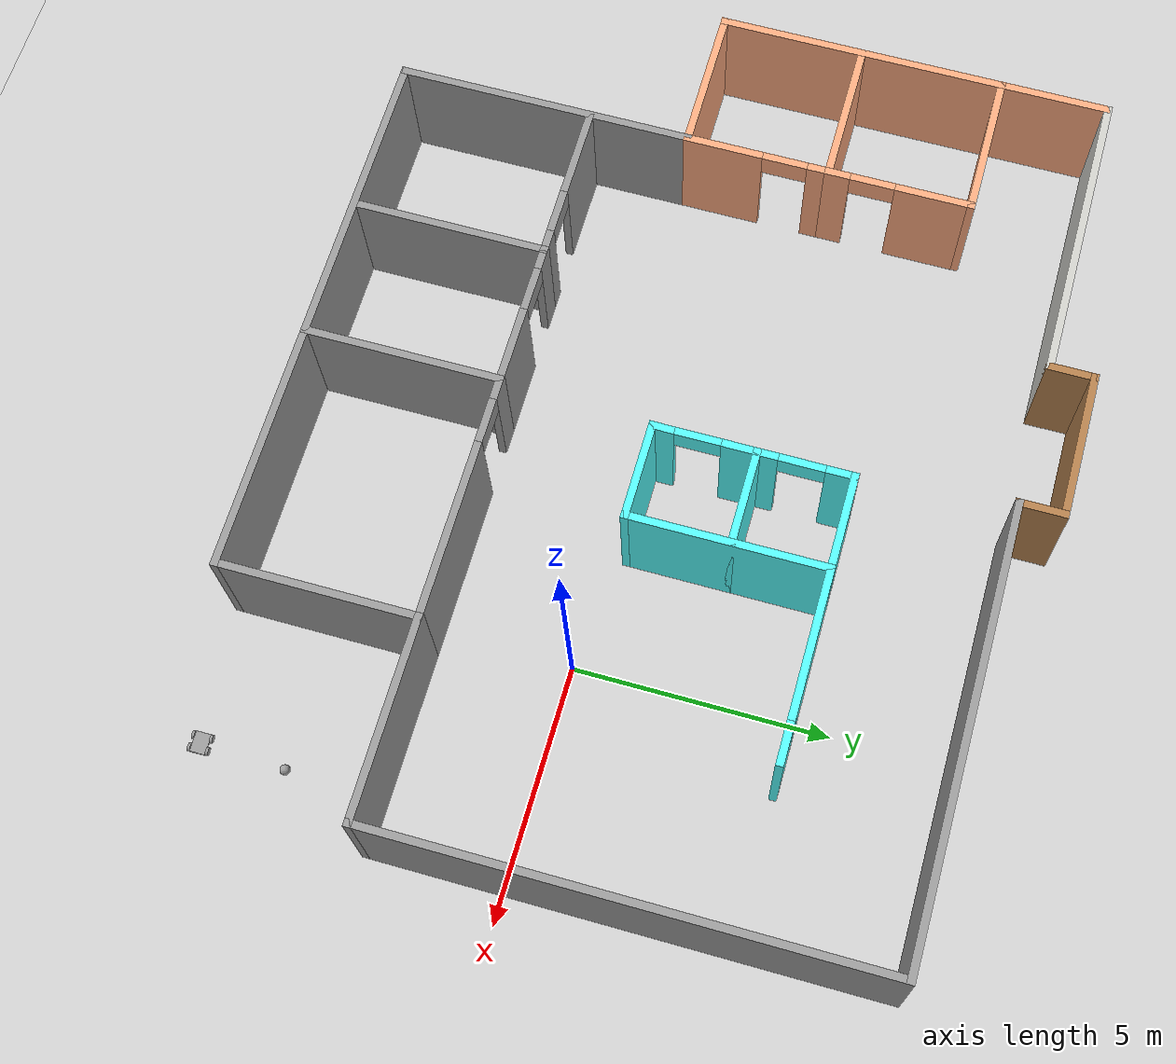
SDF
<sdf version="1.6">
 <world name="default">
  <model name="ground_plane">
   <static>1</static>
   <link name="link">
    <collision name="collision">
     <geometry><plane><normal>0 0 1</normal><size>100 100</size></plane></geometry>
     <surface>
      <contact><collide_bitmask>65535</collide_bitmask></contact>
      <friction><ode><mu>100</mu><mu2>50</mu2></ode></friction>
     </surface>
    </collision>
    <visual name="visual">
     <cast_shadows>0</cast_shadows>
     <geometry><plane><normal>0 0 1</normal><size>100 100</size></plane></geometry>
     <material>
      <script><uri>file://media/materials/scripts/gazebo.material</uri><name>Gazebo/Grey</name></script>
     </material>
    </visual>
   </link>
  </model>
  <model name="building">
   <pose>-4.41923 0.8356 0 0 -0 0</pose>
   <link name="Wall_10">
    <collision name="Wall_10_Collision">
     <geometry><box><size>11 0.15 2.5</size></box></geometry>
     <pose>0 0 1.25 0 -0 0</pose>
    </collision>
    <visual name="Wall_10_Visual">
     <pose>0 0 1.25 0 -0 0</pose>
     <geometry><box><size>11 0.15 2.5</size></box></geometry>
     <material>
      <script><uri>file://media/materials/scripts/gazebo.material</uri><name>Gazebo/Grey</name></script>
      <ambient>1 1 1 1</ambient>
     </material>
     <meta><layer>0</layer></meta>
    </visual>
    <pose>-0.5 -7.275 0 0 -0 3.14159</pose>
   </link>
   <link name="Wall_11">
    <collision name="Wall_11_Collision">
     <geometry><box><size>6 0.15 2.5</size></box></geometry>
     <pose>0 0 1.25 0 -0 0</pose>
    </collision>
    <visual name="Wall_11_Visual">
     <pose>0 0 1.25 0 -0 0</pose>
     <geometry><box><size>6 0.15 2.5</size></box></geometry>
     <material>
      <script><uri>file://media/materials/scripts/gazebo.material</uri><name>Gazebo/Grey</name></script>
      <ambient>1 1 1 1</ambient>
     </material>
     <meta><layer>0</layer></meta>
    </visual>
    <pose>-5.925 -4.35 0 0 -0 1.5708</pose>
   </link>
   <link name="Wall_12">
    <collision name="Wall_12_Collision">
     <geometry><box><size>3 0.15 2.5</size></box></geometry>
     <pose>0 0 1.25 0 -0 0</pose>
    </collision>
    <visual name="Wall_12_Visual">
     <pose>0 0 1.25 0 -0 0</pose>
     <geometry><box><size>3 0.15 2.5</size></box></geometry>
     <material>
      <script><uri>file://media/materials/scripts/gazebo.material</uri><name>Gazebo/Grey</name></script>
      <ambient>1 0.666667 0.498039 1</ambient>
     </material>
     <meta><layer>0</layer></meta>
    </visual>
    <pose>-7.35 -1.425 0 0 -0 3.14159</pose>
   </link>
   <link name="Wall_13">
    <collision name="Wall_13_Collision">
     <geometry><box><size>8 0.15 2.5</size></box></geometry>
     <pose>0 0 1.25 0 -0 0</pose>
    </collision>
    <visual name="Wall_13_Visual">
     <pose>0 0 1.25 0 -0 0</pose>
     <geometry><box><size>8 0.15 2.5</size></box></geometry>
     <material>
      <script><uri>file://media/materials/scripts/gazebo.material</uri><name>Gazebo/Grey</name></script>
      <ambient>1 0.666667 0.498039 1</ambient>
     </material>
     <meta><layer>0</layer></meta>
    </visual>
    <pose>-8.775 2.5 0 0 -0 1.5708</pose>
   </link>
   <link name="Wall_15">
    <pose>-5.925 0 0 0 -0 1.5708</pose>
    <visual name="Wall_15_Visual_0">
     <pose>-0.699732 0 1.25 0 -0 0</pose>
     <geometry><box><size>1.60054 0.15 2.5</size></box></geometry>
     <material>
      <script><uri>file://media/materials/scripts/gazebo.material</uri><name>Gazebo/Grey</name></script>
      <ambient>1 0.666667 0.498039 1</ambient>
     </material>
     <meta><layer>0</layer></meta>
    </visual>
    <collision name="Wall_15_Collision_0">
     <geometry><box><size>1.60054 0.15 2.5</size></box></geometry>
     <pose>-0.699732 0 1.25 0 -0 0</pose>
    </collision>
    <visual name="Wall_15_Visual_1">
     <pose>1.25027 0 1.25 0 -0 0</pose>
     <geometry><box><size>0.499463 0.15 2.5</size></box></geometry>
     <material>
      <script><uri>file://media/materials/scripts/gazebo.material</uri><name>Gazebo/Grey</name></script>
      <ambient>1 0.666667 0.498039 1</ambient>
     </material>
     <meta><layer>0</layer></meta>
    </visual>
    <collision name="Wall_15_Collision_1">
     <geometry><box><size>0.499463 0.15 2.5</size></box></geometry>
     <pose>1.25027 0 1.25 0 -0 0</pose>
    </collision>
    <visual name="Wall_15_Visual_2">
     <pose>0.550537 0 2.25 0 -0 0</pose>
     <geometry><box><size>0.9 0.15 0.5</size></box></geometry>
     <material>
      <script><uri>file://media/materials/scripts/gazebo.material</uri><name>Gazebo/Grey</name></script>
      <ambient>1 0.666667 0.498039 1</ambient>
     </material>
     <meta><layer>0</layer></meta>
    </visual>
    <collision name="Wall_15_Collision_2">
     <geometry><box><size>0.9 0.15 0.5</size></box></geometry>
     <pose>0.550537 0 2.25 0 -0 0</pose>
    </collision>
   </link>
   <link name="Wall_16">
    <collision name="Wall_16_Collision">
     <geometry><box><size>3 0.15 2.5</size></box></geometry>
     <pose>0 0 1.25 0 -0 0</pose>
    </collision>
    <visual name="Wall_16_Visual">
     <pose>0 0 1.25 0 -0 0</pose>
     <geometry><box><size>3 0.15 2.5</size></box></geometry>
     <material>
      <script><uri>file://media/materials/scripts/gazebo.material</uri><name>Gazebo/Grey</name></script>
      <ambient>1 0.666667 0.498039 1</ambient>
     </material>
     <meta><layer>0</layer></meta>
    </visual>
    <pose>-7.35 1.425 0 0 -0 3.14159</pose>
   </link>
   <link name="Wall_18">
    <pose>-5.925 2.85 0 0 -0 1.5708</pose>
    <visual name="Wall_18_Visual_0">
     <pose>-1.24482 0 1.25 0 -0 0</pose>
     <geometry><box><size>0.510355 0.15 2.5</size></box></geometry>
     <material>
      <script><uri>file://media/materials/scripts/gazebo.material</uri><name>Gazebo/Grey</name></script>
      <ambient>1 0.666667 0.498039 1</ambient>
     </material>
     <meta><layer>0</layer></meta>
    </visual>
    <collision name="Wall_18_Collision_0">
     <geometry><box><size>0.510355 0.15 2.5</size></box></geometry>
     <pose>-1.24482 0 1.25 0 -0 0</pose>
    </collision>
    <visual name="Wall_18_Visual_1">
     <pose>0.705177 0 1.25 0 -0 0</pose>
     <geometry><box><size>1.58964 0.15 2.5</size></box></geometry>
     <material>
      <script><uri>file://media/materials/scripts/gazebo.material</uri><name>Gazebo/Grey</name></script>
      <ambient>1 0.666667 0.498039 1</ambient>
     </material>
     <meta><layer>0</layer></meta>
    </visual>
    <collision name="Wall_18_Collision_1">
     <geometry><box><size>1.58964 0.15 2.5</size></box></geometry>
     <pose>0.705177 0 1.25 0 -0 0</pose>
    </collision>
    <visual name="Wall_18_Visual_2">
     <pose>-0.539645 0 2.25 0 -0 0</pose>
     <geometry><box><size>0.9 0.15 0.5</size></box></geometry>
     <material>
      <script><uri>file://media/materials/scripts/gazebo.material</uri><name>Gazebo/Grey</name></script>
      <ambient>1 0.666667 0.498039 1</ambient>
     </material>
     <meta><layer>0</layer></meta>
    </visual>
    <collision name="Wall_18_Collision_2">
     <geometry><box><size>0.9 0.15 0.5</size></box></geometry>
     <pose>-0.539645 0 2.25 0 -0 0</pose>
    </collision>
   </link>
   <link name="Wall_19">
    <collision name="Wall_19_Collision">
     <geometry><box><size>3 0.15 2.5</size></box></geometry>
     <pose>0 0 1.25 0 -0 0</pose>
    </collision>
    <visual name="Wall_19_Visual">
     <pose>0 0 1.25 0 -0 0</pose>
     <geometry><box><size>3 0.15 2.5</size></box></geometry>
     <material>
      <script><uri>file://media/materials/scripts/gazebo.material</uri><name>Gazebo/Grey</name></script>
      <ambient>1 0.666667 0.498039 1</ambient>
     </material>
     <meta><layer>0</layer></meta>
    </visual>
    <pose>-7.35 4.275 0 0 -0 3.14159</pose>
   </link>
   <link name="Wall_2">
    <collision name="Wall_2_Collision">
     <geometry><box><size>6 0.15 2.5</size></box></geometry>
     <pose>0 0 1.25 0 -0 0</pose>
    </collision>
    <visual name="Wall_2_Visual">
     <pose>0 0 1.25 0 -0 0</pose>
     <geometry><box><size>6 0.15 2.5</size></box></geometry>
     <material>
      <script><uri>file://media/materials/scripts/gazebo.material</uri><name>Gazebo/CeilingTiled</name></script>
      <ambient>1 1 1 1</ambient>
     </material>
     <meta><layer>0</layer></meta>
    </visual>
    <pose>-5.85 6.425 0 0 -0 0</pose>
   </link>
   <link name="Wall_21">
    <pose>2.5 -3.425 0 0 -0 3.14159</pose>
    <visual name="Wall_21_Visual_0">
     <pose>-0.701525 0 1.25 0 -0 0</pose>
     <geometry><box><size>3.59695 0.15 2.5</size></box></geometry>
     <material>
      <script><uri>file://media/materials/scripts/gazebo.material</uri><name>Gazebo/Grey</name></script>
      <ambient>1 1 1 1</ambient>
     </material>
     <meta><layer>0</layer></meta>
    </visual>
    <collision name="Wall_21_Collision_0">
     <geometry><box><size>3.59695 0.15 2.5</size></box></geometry>
     <pose>-0.701525 0 1.25 0 -0 0</pose>
    </collision>
    <visual name="Wall_21_Visual_1">
     <pose>2.24848 0 1.25 0 -0 0</pose>
     <geometry><box><size>0.50305 0.15 2.5</size></box></geometry>
     <material>
      <script><uri>file://media/materials/scripts/gazebo.material</uri><name>Gazebo/Grey</name></script>
      <ambient>1 1 1 1</ambient>
     </material>
     <meta><layer>0</layer></meta>
    </visual>
    <collision name="Wall_21_Collision_1">
     <geometry><box><size>0.50305 0.15 2.5</size></box></geometry>
     <pose>2.24848 0 1.25 0 -0 0</pose>
    </collision>
    <visual name="Wall_21_Visual_2">
     <pose>1.54695 0 2.25 0 -0 0</pose>
     <geometry><box><size>0.9 0.15 0.5</size></box></geometry>
     <material>
      <script><uri>file://media/materials/scripts/gazebo.material</uri><name>Gazebo/Grey</name></script>
      <ambient>1 1 1 1</ambient>
     </material>
     <meta><layer>0</layer></meta>
    </visual>
    <collision name="Wall_21_Collision_2">
     <geometry><box><size>0.9 0.15 0.5</size></box></geometry>
     <pose>1.54695 0 2.25 0 -0 0</pose>
    </collision>
   </link>
   <link name="Wall_22">
    <collision name="Wall_22_Collision">
     <geometry><box><size>4 0.15 2.5</size></box></geometry>
     <pose>0 0 1.25 0 -0 0</pose>
    </collision>
    <visual name="Wall_22_Visual">
     <pose>0 0 1.25 0 -0 0</pose>
     <geometry><box><size>4 0.15 2.5</size></box></geometry>
     <material>
      <script><uri>file://media/materials/scripts/gazebo.material</uri><name>Gazebo/Grey</name></script>
      <ambient>1 1 1 1</ambient>
     </material>
     <meta><layer>0</layer></meta>
    </visual>
    <pose>0.075 -5.35 0 0 0 -1.5708</pose>
   </link>
   <link name="Wall_24">
    <pose>-1.35 -3.425 0 0 -0 3.14159</pose>
    <visual name="Wall_24_Visual_0">
     <pose>-0.700436 0 1.25 0 -0 0</pose>
     <geometry><box><size>1.59913 0.15 2.5</size></box></geometry>
     <material>
      <script><uri>file://media/materials/scripts/gazebo.material</uri><name>Gazebo/Grey</name></script>
      <ambient>1 1 1 1</ambient>
     </material>
     <meta><layer>0</layer></meta>
    </visual>
    <collision name="Wall_24_Collision_0">
     <geometry><box><size>1.59913 0.15 2.5</size></box></geometry>
     <pose>-0.700436 0 1.25 0 -0 0</pose>
    </collision>
    <visual name="Wall_24_Visual_1">
     <pose>1.24956 0 1.25 0 -0 0</pose>
     <geometry><box><size>0.500873 0.15 2.5</size></box></geometry>
     <material>
      <script><uri>file://media/materials/scripts/gazebo.material</uri><name>Gazebo/Grey</name></script>
      <ambient>1 1 1 1</ambient>
     </material>
     <meta><layer>0</layer></meta>
    </visual>
    <collision name="Wall_24_Collision_1">
     <geometry><box><size>0.500873 0.15 2.5</size></box></geometry>
     <pose>1.24956 0 1.25 0 -0 0</pose>
    </collision>
    <visual name="Wall_24_Visual_2">
     <pose>0.549127 0 2.25 0 -0 0</pose>
     <geometry><box><size>0.9 0.15 0.5</size></box></geometry>
     <material>
      <script><uri>file://media/materials/scripts/gazebo.material</uri><name>Gazebo/Grey</name></script>
      <ambient>1 1 1 1</ambient>
     </material>
     <meta><layer>0</layer></meta>
    </visual>
    <collision name="Wall_24_Collision_2">
     <geometry><box><size>0.9 0.15 0.5</size></box></geometry>
     <pose>0.549127 0 2.25 0 -0 0</pose>
    </collision>
   </link>
   <link name="Wall_25">
    <collision name="Wall_25_Collision">
     <geometry><box><size>4 0.15 2.5</size></box></geometry>
     <pose>0 0 1.25 0 -0 0</pose>
    </collision>
    <visual name="Wall_25_Visual">
     <pose>0 0 1.25 0 -0 0</pose>
     <geometry><box><size>4 0.15 2.5</size></box></geometry>
     <material>
      <script><uri>file://media/materials/scripts/gazebo.material</uri><name>Gazebo/Grey</name></script>
      <ambient>1 1 1 1</ambient>
     </material>
     <meta><layer>0</layer></meta>
    </visual>
    <pose>-2.775 -5.35 0 0 0 -1.5708</pose>
   </link>
   <link name="Wall_27">
    <pose>-4.325 -3.425 0 0 -0 3.14159</pose>
    <visual name="Wall_27_Visual_0">
     <pose>-1.37053 0 1.25 0 -0 0</pose>
     <geometry><box><size>0.508945 0.15 2.5</size></box></geometry>
     <material>
      <script><uri>file://media/materials/scripts/gazebo.material</uri><name>Gazebo/Grey</name></script>
      <ambient>1 1 1 1</ambient>
     </material>
     <meta><layer>0</layer></meta>
    </visual>
    <collision name="Wall_27_Collision_0">
     <geometry><box><size>0.508945 0.15 2.5</size></box></geometry>
     <pose>-1.37053 0 1.25 0 -0 0</pose>
    </collision>
    <visual name="Wall_27_Visual_1">
     <pose>0.704472 0 1.25 0 -0 0</pose>
     <geometry><box><size>1.84106 0.15 2.5</size></box></geometry>
     <material>
      <script><uri>file://media/materials/scripts/gazebo.material</uri><name>Gazebo/Grey</name></script>
      <ambient>1 1 1 1</ambient>
     </material>
     <meta><layer>0</layer></meta>
    </visual>
    <collision name="Wall_27_Collision_1">
     <geometry><box><size>1.84106 0.15 2.5</size></box></geometry>
     <pose>0.704472 0 1.25 0 -0 0</pose>
    </collision>
    <visual name="Wall_27_Visual_2">
     <pose>-0.666055 0 2.25 0 -0 0</pose>
     <geometry><box><size>0.9 0.15 0.5</size></box></geometry>
     <material>
      <script><uri>file://media/materials/scripts/gazebo.material</uri><name>Gazebo/Grey</name></script>
      <ambient>1 1 1 1</ambient>
     </material>
     <meta><layer>0</layer></meta>
    </visual>
    <collision name="Wall_27_Collision_2">
     <geometry><box><size>0.9 0.15 0.5</size></box></geometry>
     <pose>-0.666055 0 2.25 0 -0 0</pose>
    </collision>
   </link>
   <link name="Wall_3">
    <collision name="Wall_3_Collision">
     <geometry><box><size>1 0.15 2.5</size></box></geometry>
     <pose>0 0 1.25 0 -0 0</pose>
    </collision>
    <visual name="Wall_3_Visual">
     <pose>0 0 1.25 0 -0 0</pose>
     <geometry><box><size>1 0.15 2.5</size></box></geometry>
     <material>
      <script><uri>file://media/materials/scripts/gazebo.material</uri><name>Gazebo/Wood</name></script>
      <ambient>1 1 1 1</ambient>
     </material>
     <meta><layer>0</layer></meta>
    </visual>
    <pose>-2.925 6.85 0 0 -0 1.5708</pose>
   </link>
   <link name="Wall_30">
    <collision name="Wall_30_Collision">
     <geometry><box><size>1 0.15 2.5</size></box></geometry>
     <pose>0 0 1.25 0 -0 0</pose>
    </collision>
    <visual name="Wall_30_Visual">
     <pose>0 0 1.25 0 -0 0</pose>
     <geometry><box><size>1 0.15 2.5</size></box></geometry>
     <material>
      <script><uri>file://media/materials/scripts/gazebo.material</uri><name>Gazebo/Grey</name></script>
      <ambient>0.333333 1 1 1</ambient>
     </material>
     <meta><layer>0</layer></meta>
    </visual>
    <pose>5.35 3.425 0 0 -0 0</pose>
   </link>
   <link name="Wall_32">
    <collision name="Wall_32_Collision">
     <geometry><box><size>3 0.15 2.5</size></box></geometry>
     <pose>0 0 1.25 0 -0 0</pose>
    </collision>
    <visual name="Wall_32_Visual">
     <pose>0 0 1.25 0 -0 0</pose>
     <geometry><box><size>3 0.15 2.5</size></box></geometry>
     <material>
      <script><uri>file://media/materials/scripts/gazebo.material</uri><name>Gazebo/Grey</name></script>
      <ambient>0.333333 1 1 1</ambient>
     </material>
     <meta><layer>0</layer></meta>
    </visual>
    <pose>3.5 3.425 0 0 -0 3.14159</pose>
   </link>
   <link name="Wall_34">
    <collision name="Wall_34_Collision">
     <geometry><box><size>4 0.15 2.5</size></box></geometry>
     <pose>0 0 1.25 0 -0 0</pose>
    </collision>
    <visual name="Wall_34_Visual">
     <pose>0 0 1.25 0 -0 0</pose>
     <geometry><box><size>4 0.15 2.5</size></box></geometry>
     <material>
      <script><uri>file://media/materials/scripts/gazebo.material</uri><name>Gazebo/Grey</name></script>
      <ambient>0.333333 1 1 1</ambient>
     </material>
     <meta><layer>0</layer></meta>
    </visual>
    <pose>2.075 1.5 0 0 0 -1.5708</pose>
   </link>
   <link name="Wall_35">
    <collision name="Wall_35_Collision">
     <geometry><box><size>2 0.15 2.5</size></box></geometry>
     <pose>0 0 1.25 0 -0 0</pose>
    </collision>
    <visual name="Wall_35_Visual">
     <pose>0 0 1.25 0 -0 0</pose>
     <geometry><box><size>2 0.15 2.5</size></box></geometry>
     <material>
      <script><uri>file://media/materials/scripts/gazebo.material</uri><name>Gazebo/Grey</name></script>
      <ambient>0.333333 1 1 1</ambient>
     </material>
     <meta><layer>0</layer></meta>
    </visual>
    <pose>1.15 -0.425 0 0 -0 3.14159</pose>
   </link>
   <link name="Wall_37">
    <collision name="Wall_37_Collision">
     <geometry><box><size>2 0.15 2.5</size></box></geometry>
     <pose>0 0 1.25 0 -0 0</pose>
    </collision>
    <visual name="Wall_37_Visual">
     <pose>0 0 1.25 0 -0 0</pose>
     <geometry><box><size>2 0.15 2.5</size></box></geometry>
     <material>
      <script><uri>file://media/materials/scripts/gazebo.material</uri><name>Gazebo/Grey</name></script>
      <ambient>0.333333 1 1 1</ambient>
     </material>
     <meta><layer>0</layer></meta>
    </visual>
    <pose>1.15 3.425 0 0 -0 0</pose>
   </link>
   <link name="Wall_39">
    <pose>0.225 2.5 0 0 0 -1.5708</pose>
    <visual name="Wall_39_Visual_0">
     <pose>-0.69061 0 1.25 0 -0 0</pose>
     <geometry><box><size>0.61878 0.15 2.5</size></box></geometry>
     <material>
      <script><uri>file://media/materials/scripts/gazebo.material</uri><name>Gazebo/Grey</name></script>
      <ambient>0.333333 1 1 1</ambient>
     </material>
     <meta><layer>0</layer></meta>
    </visual>
    <collision name="Wall_39_Collision_0">
     <geometry><box><size>0.61878 0.15 2.5</size></box></geometry>
     <pose>-0.69061 0 1.25 0 -0 0</pose>
    </collision>
    <visual name="Wall_39_Visual_1">
     <pose>0.75939 0 1.25 0 -0 0</pose>
     <geometry><box><size>0.48122 0.15 2.5</size></box></geometry>
     <material>
      <script><uri>file://media/materials/scripts/gazebo.material</uri><name>Gazebo/Grey</name></script>
      <ambient>0.333333 1 1 1</ambient>
     </material>
     <meta><layer>0</layer></meta>
    </visual>
    <collision name="Wall_39_Collision_1">
     <geometry><box><size>0.48122 0.15 2.5</size></box></geometry>
     <pose>0.75939 0 1.25 0 -0 0</pose>
    </collision>
    <visual name="Wall_39_Visual_2">
     <pose>0.06878 0 2.25 0 -0 0</pose>
     <geometry><box><size>0.9 0.15 0.5</size></box></geometry>
     <material>
      <script><uri>file://media/materials/scripts/gazebo.material</uri><name>Gazebo/Grey</name></script>
      <ambient>0.333333 1 1 1</ambient>
     </material>
     <meta><layer>0</layer></meta>
    </visual>
    <collision name="Wall_39_Collision_2">
     <geometry><box><size>0.9 0.15 0.5</size></box></geometry>
     <pose>0.06878 0 2.25 0 -0 0</pose>
    </collision>
   </link>
   <link name="Wall_4">
    <collision name="Wall_4_Collision">
     <geometry><box><size>3 0.15 2.5</size></box></geometry>
     <pose>0 0 1.25 0 -0 0</pose>
    </collision>
    <visual name="Wall_4_Visual">
     <pose>0 0 1.25 0 -0 0</pose>
     <geometry><box><size>3 0.15 2.5</size></box></geometry>
     <material>
      <script><uri>file://media/materials/scripts/gazebo.material</uri><name>Gazebo/Wood</name></script>
      <ambient>1 1 1 1</ambient>
     </material>
     <meta><layer>0</layer></meta>
    </visual>
    <pose>-1.5 7.275 0 0 -0 0</pose>
   </link>
   <link name="Wall_40">
    <collision name="Wall_40_Collision">
     <geometry><box><size>2 0.15 2.5</size></box></geometry>
     <pose>0 0 1.25 0 -0 0</pose>
    </collision>
    <visual name="Wall_40_Visual">
     <pose>0 0 1.25 0 -0 0</pose>
     <geometry><box><size>2 0.15 2.5</size></box></geometry>
     <material>
      <script><uri>file://media/materials/scripts/gazebo.material</uri><name>Gazebo/Grey</name></script>
      <ambient>0.333333 1 1 1</ambient>
     </material>
     <meta><layer>0</layer></meta>
    </visual>
    <pose>1.15 1.575 0 0 -0 0</pose>
   </link>
   <link name="Wall_42">
    <pose>0.225 0.575 0 0 0 -1.5708</pose>
    <visual name="Wall_42_Visual_0">
     <pose>-0.699448 0 1.25 0 -0 0</pose>
     <geometry><box><size>0.751103 0.15 2.5</size></box></geometry>
     <material>
      <script><uri>file://media/materials/scripts/gazebo.material</uri><name>Gazebo/Grey</name></script>
      <ambient>0.333333 1 1 1</ambient>
     </material>
     <meta><layer>0</layer></meta>
    </visual>
    <collision name="Wall_42_Collision_0">
     <geometry><box><size>0.751103 0.15 2.5</size></box></geometry>
     <pose>-0.699448 0 1.25 0 -0 0</pose>
    </collision>
    <visual name="Wall_42_Visual_1">
     <pose>0.825552 0 1.25 0 -0 0</pose>
     <geometry><box><size>0.498897 0.15 2.5</size></box></geometry>
     <material>
      <script><uri>file://media/materials/scripts/gazebo.material</uri><name>Gazebo/Grey</name></script>
      <ambient>0.333333 1 1 1</ambient>
     </material>
     <meta><layer>0</layer></meta>
    </visual>
    <collision name="Wall_42_Collision_1">
     <geometry><box><size>0.498897 0.15 2.5</size></box></geometry>
     <pose>0.825552 0 1.25 0 -0 0</pose>
    </collision>
    <visual name="Wall_42_Visual_2">
     <pose>0.126103 0 2.25 0 -0 0</pose>
     <geometry><box><size>0.9 0.15 0.5</size></box></geometry>
     <material>
      <script><uri>file://media/materials/scripts/gazebo.material</uri><name>Gazebo/Grey</name></script>
      <ambient>0.333333 1 1 1</ambient>
     </material>
     <meta><layer>0</layer></meta>
    </visual>
    <collision name="Wall_42_Collision_2">
     <geometry><box><size>0.9 0.15 0.5</size></box></geometry>
     <pose>0.126103 0 2.25 0 -0 0</pose>
    </collision>
   </link>
   <link name="Wall_5">
    <collision name="Wall_5_Collision">
     <geometry><box><size>1 0.15 2.5</size></box></geometry>
     <pose>0 0 1.25 0 -0 0</pose>
    </collision>
    <visual name="Wall_5_Visual">
     <pose>0 0 1.25 0 -0 0</pose>
     <geometry><box><size>1 0.15 2.5</size></box></geometry>
     <material>
      <script><uri>file://media/materials/scripts/gazebo.material</uri><name>Gazebo/Wood</name></script>
      <ambient>1 1 1 1</ambient>
     </material>
     <meta><layer>0</layer></meta>
    </visual>
    <pose>-0.075 6.85 0 0 0 -1.5708</pose>
   </link>
   <link name="Wall_6">
    <collision name="Wall_6_Collision">
     <geometry><box><size>9 0.15 2.5</size></box></geometry>
     <pose>0 0 1.25 0 -0 0</pose>
    </collision>
    <visual name="Wall_6_Visual">
     <pose>0 0 1.25 0 -0 0</pose>
     <geometry><box><size>9 0.15 2.5</size></box></geometry>
     <material>
      <script><uri>file://media/materials/scripts/gazebo.material</uri><name>Gazebo/Grey</name></script>
      <ambient>1 1 1 1</ambient>
     </material>
     <meta><layer>0</layer></meta>
    </visual>
    <pose>4.35 6.425 0 0 -0 0</pose>
   </link>
   <link name="Wall_7">
    <collision name="Wall_7_Collision">
     <geometry><box><size>10 0.15 2.5</size></box></geometry>
     <pose>0 0 1.25 0 -0 0</pose>
    </collision>
    <visual name="Wall_7_Visual">
     <pose>0 0 1.25 0 -0 0</pose>
     <geometry><box><size>10 0.15 2.5</size></box></geometry>
     <material>
      <script><uri>file://media/materials/scripts/gazebo.material</uri><name>Gazebo/Grey</name></script>
      <ambient>1 1 1 1</ambient>
     </material>
     <meta><layer>0</layer></meta>
    </visual>
    <pose>8.775 1.5 0 0 0 -1.5708</pose>
   </link>
   <link name="Wall_8">
    <collision name="Wall_8_Collision">
     <geometry><box><size>4 0.15 2.5</size></box></geometry>
     <pose>0 0 1.25 0 -0 0</pose>
    </collision>
    <visual name="Wall_8_Visual">
     <pose>0 0 1.25 0 -0 0</pose>
     <geometry><box><size>4 0.15 2.5</size></box></geometry>
     <material>
      <script><uri>file://media/materials/scripts/gazebo.material</uri><name>Gazebo/Grey</name></script>
      <ambient>1 1 1 1</ambient>
     </material>
     <meta><layer>0</layer></meta>
    </visual>
    <pose>6.85 -3.425 0 0 -0 3.14159</pose>
   </link>
   <link name="Wall_9">
    <collision name="Wall_9_Collision">
     <geometry><box><size>4 0.15 2.5</size></box></geometry>
     <pose>0 0 1.25 0 -0 0</pose>
    </collision>
    <visual name="Wall_9_Visual">
     <pose>0 0 1.25 0 -0 0</pose>
     <geometry><box><size>4 0.15 2.5</size></box></geometry>
     <material>
      <script><uri>file://media/materials/scripts/gazebo.material</uri><name>Gazebo/Grey</name></script>
      <ambient>1 1 1 1</ambient>
     </material>
     <meta><layer>0</layer></meta>
    </visual>
    <pose>4.925 -5.35 0 0 0 -1.5708</pose>
   </link>
   <static>1</static>
  </model>
  <model name="robot">
   <link name="link_0">
    <pose>0 1e-06 -0 0 -0 0</pose>
    <inertial>
     <mass>1</mass>
     <inertia>
      <ixx>0.166667</ixx>
      <ixy>0</ixy>
      <ixz>0</ixz>
      <iyy>0.166667</iyy>
      <iyz>0</iyz>
      <izz>0.166667</izz>
     </inertia>
    </inertial>
    <visual name="visual">
     <geometry><box><size>0.4 0.3 0.05</size></box></geometry>
     <material>
      <lighting>1</lighting>
      <script><uri>file://media/materials/scripts/gazebo.material</uri><name>Gazebo/Grey</name></script>
      <shader type="pixel"><normal_map>__default__</normal_map></shader>
      <ambient>0.3 0.3 0.3 1</ambient>
      <diffuse>0.7 0.7 0.7 1</diffuse>
      <specular>0.01 0.01 0.01 1</specular>
      <emissive>0 0 0 1</emissive>
     </material>
    </visual>
    <collision name="collision">
     <geometry><box><size>0.4 0.3 0.05</size></box></geometry>
     <surface>
      <friction>
       <ode><mu>1</mu><mu2>1</mu2><fdir1>0 0 0</fdir1><slip1>0</slip1><slip2>0</slip2></ode>
       <torsional>
        <coefficient>1</coefficient>
        <patch_radius>0</patch_radius>
        <surface_radius>0</surface_radius>
        <use_patch_radius>1</use_patch_radius>
        <ode><slip>0</slip></ode>
       </torsional>
      </friction>
      <bounce><restitution_coefficient>0</restitution_coefficient><threshold>1e+06</threshold></bounce>
      <contact>
       <collide_without_contact>0</collide_without_contact>
       <collide_without_contact_bitmask>1</collide_without_contact_bitmask>
       <collide_bitmask>1</collide_bitmask>
       <ode>
        <soft_cfm>0</soft_cfm>
        <soft_erp>0.2</soft_erp>
        <kp>1e+13</kp>
        <kd>1</kd>
        <max_vel>0.01</max_vel>
        <min_depth>0</min_depth>
       </ode>
       <bullet>
        <split_impulse>1</split_impulse>
        <split_impulse_penetration_threshold>-0.01</split_impulse_penetration_threshold>
        <soft_cfm>0</soft_cfm>
        <soft_erp>0.2</soft_erp>
        <kp>1e+13</kp>
        <kd>1</kd>
       </bullet>
      </contact>
     </surface>
    </collision>
   </link>
   <link name="link_2">
    <pose>-0.12 -0.175012 -0 1.5707 -0 0</pose>
    <inertial>
     <mass>1</mass>
     <inertia><ixx>0.145833</ixx><ixy>0</ixy><ixz>0</ixz><iyy>0.145833</iyy><iyz>0</iyz><izz>0.125</izz></inertia>
    </inertial>
    <visual name="visual">
     <geometry><cylinder><radius>0.08</radius><length>0.05</length></cylinder></geometry>
     <material>
      <lighting>1</lighting>
      <script><uri>file://media/materials/scripts/gazebo.material</uri><name>Gazebo/Grey</name></script>
      <shader type="pixel"><normal_map>__default__</normal_map></shader>
      <ambient>0.3 0.3 0.3 1</ambient>
      <diffuse>0.7 0.7 0.7 1</diffuse>
      <specular>0.01 0.01 0.01 1</specular>
      <emissive>0 0 0 1</emissive>
     </material>
    </visual>
    <collision name="collision">
     <geometry><cylinder><radius>0.08</radius><length>0.05</length></cylinder></geometry>
     <surface>
      <friction>
       <ode><mu>1</mu><mu2>1</mu2><fdir1>0 0 0</fdir1><slip1>0</slip1><slip2>0</slip2></ode>
       <torsional>
        <coefficient>1</coefficient>
        <patch_radius>0</patch_radius>
        <surface_radius>0</surface_radius>
        <use_patch_radius>1</use_patch_radius>
        <ode><slip>0</slip></ode>
       </torsional>
      </friction>
      <bounce><restitution_coefficient>0</restitution_coefficient><threshold>1e+06</threshold></bounce>
      <contact>
       <collide_without_contact>0</collide_without_contact>
       <collide_without_contact_bitmask>1</collide_without_contact_bitmask>
       <collide_bitmask>1</collide_bitmask>
       <ode>
        <soft_cfm>0</soft_cfm>
        <soft_erp>0.2</soft_erp>
        <kp>1e+13</kp>
        <kd>1</kd>
        <max_vel>0.01</max_vel>
        <min_depth>0</min_depth>
       </ode>
       <bullet>
        <split_impulse>1</split_impulse>
        <split_impulse_penetration_threshold>-0.01</split_impulse_penetration_threshold>
        <soft_cfm>0</soft_cfm>
        <soft_erp>0.2</soft_erp>
        <kp>1e+13</kp>
        <kd>1</kd>
       </bullet>
      </contact>
     </surface>
    </collision>
   </link>
   <link name="link_2_clone">
    <pose>-0.12 0.175009 -0 1.5707 -0 0</pose>
    <inertial>
     <mass>1</mass>
     <inertia><ixx>0.145833</ixx><ixy>0</ixy><ixz>0</ixz><iyy>0.145833</iyy><iyz>0</iyz><izz>0.125</izz></inertia>
    </inertial>
    <visual name="visual">
     <geometry><cylinder><radius>0.08</radius><length>0.05</length></cylinder></geometry>
     <material>
      <lighting>1</lighting>
      <script><uri>file://media/materials/scripts/gazebo.material</uri><name>Gazebo/Grey</name></script>
      <shader type="pixel"><normal_map>__default__</normal_map></shader>
      <ambient>0.3 0.3 0.3 1</ambient>
      <diffuse>0.7 0.7 0.7 1</diffuse>
      <specular>0.01 0.01 0.01 1</specular>
      <emissive>0 0 0 1</emissive>
     </material>
    </visual>
    <collision name="collision">
     <geometry><cylinder><radius>0.08</radius><length>0.05</length></cylinder></geometry>
     <surface>
      <friction>
       <ode><mu>1</mu><mu2>1</mu2><fdir1>0 0 0</fdir1><slip1>0</slip1><slip2>0</slip2></ode>
       <torsional>
        <coefficient>1</coefficient>
        <patch_radius>0</patch_radius>
        <surface_radius>0</surface_radius>
        <use_patch_radius>1</use_patch_radius>
        <ode><slip>0</slip></ode>
       </torsional>
      </friction>
      <bounce><restitution_coefficient>0</restitution_coefficient><threshold>1e+06</threshold></bounce>
      <contact>
       <collide_without_contact>0</collide_without_contact>
       <collide_without_contact_bitmask>1</collide_without_contact_bitmask>
       <collide_bitmask>1</collide_bitmask>
       <ode>
        <soft_cfm>0</soft_cfm>
        <soft_erp>0.2</soft_erp>
        <kp>1e+13</kp>
        <kd>1</kd>
        <max_vel>0.01</max_vel>
        <min_depth>0</min_depth>
       </ode>
       <bullet>
        <split_impulse>1</split_impulse>
        <split_impulse_penetration_threshold>-0.01</split_impulse_penetration_threshold>
        <soft_cfm>0</soft_cfm>
        <soft_erp>0.2</soft_erp>
        <kp>1e+13</kp>
        <kd>1</kd>
       </bullet>
      </contact>
     </surface>
    </collision>
   </link>
   <link name="link_2_clone_0">
    <pose>0.12 -0.175007 -0 1.5707 -0 0</pose>
    <inertial>
     <mass>1</mass>
     <inertia><ixx>0.145833</ixx><ixy>0</ixy><ixz>0</ixz><iyy>0.145833</iyy><iyz>0</iyz><izz>0.125</izz></inertia>
    </inertial>
    <visual name="visual">
     <geometry><cylinder><radius>0.08</radius><length>0.05</length></cylinder></geometry>
     <material>
      <lighting>1</lighting>
      <script><uri>file://media/materials/scripts/gazebo.material</uri><name>Gazebo/Grey</name></script>
      <shader type="pixel"><normal_map>__default__</normal_map></shader>
      <ambient>0.3 0.3 0.3 1</ambient>
      <diffuse>0.7 0.7 0.7 1</diffuse>
      <specular>0.01 0.01 0.01 1</specular>
      <emissive>0 0 0 1</emissive>
     </material>
    </visual>
    <collision name="collision">
     <geometry><cylinder><radius>0.08</radius><length>0.05</length></cylinder></geometry>
     <surface>
      <friction>
       <ode><mu>1</mu><mu2>1</mu2><fdir1>0 0 0</fdir1><slip1>0</slip1><slip2>0</slip2></ode>
       <torsional>
        <coefficient>1</coefficient>
        <patch_radius>0</patch_radius>
        <surface_radius>0</surface_radius>
        <use_patch_radius>1</use_patch_radius>
        <ode><slip>0</slip></ode>
       </torsional>
      </friction>
      <bounce><restitution_coefficient>0</restitution_coefficient><threshold>1e+06</threshold></bounce>
      <contact>
       <collide_without_contact>0</collide_without_contact>
       <collide_without_contact_bitmask>1</collide_without_contact_bitmask>
       <collide_bitmask>1</collide_bitmask>
       <ode>
        <soft_cfm>0</soft_cfm>
        <soft_erp>0.2</soft_erp>
        <kp>1e+13</kp>
        <kd>1</kd>
        <max_vel>0.01</max_vel>
        <min_depth>0</min_depth>
       </ode>
       <bullet>
        <split_impulse>1</split_impulse>
        <split_impulse_penetration_threshold>-0.01</split_impulse_penetration_threshold>
        <soft_cfm>0</soft_cfm>
        <soft_erp>0.2</soft_erp>
        <kp>1e+13</kp>
        <kd>1</kd>
       </bullet>
      </contact>
     </surface>
    </collision>
   </link>
   <link name="link_2_clone_1">
    <pose>0.12 0.175009 -0 1.5707 -0 0</pose>
    <inertial>
     <mass>1</mass>
     <inertia><ixx>0.145833</ixx><ixy>0</ixy><ixz>0</ixz><iyy>0.145833</iyy><iyz>0</iyz><izz>0.125</izz></inertia>
    </inertial>
    <visual name="visual">
     <geometry><cylinder><radius>0.08</radius><length>0.05</length></cylinder></geometry>
     <material>
      <lighting>1</lighting>
      <script><uri>file://media/materials/scripts/gazebo.material</uri><name>Gazebo/Grey</name></script>
      <shader type="pixel"><normal_map>__default__</normal_map></shader>
      <ambient>0.3 0.3 0.3 1</ambient>
      <diffuse>0.7 0.7 0.7 1</diffuse>
      <specular>0.01 0.01 0.01 1</specular>
      <emissive>0 0 0 1</emissive>
     </material>
    </visual>
    <collision name="collision">
     <geometry><cylinder><radius>0.08</radius><length>0.05</length></cylinder></geometry>
     <surface>
      <friction>
       <ode><mu>1</mu><mu2>1</mu2><fdir1>0 0 0</fdir1><slip1>0</slip1><slip2>0</slip2></ode>
       <torsional>
        <coefficient>1</coefficient>
        <patch_radius>0</patch_radius>
        <surface_radius>0</surface_radius>
        <use_patch_radius>1</use_patch_radius>
        <ode><slip>0</slip></ode>
       </torsional>
      </friction>
      <bounce><restitution_coefficient>0</restitution_coefficient><threshold>1e+06</threshold></bounce>
      <contact>
       <collide_without_contact>0</collide_without_contact>
       <collide_without_contact_bitmask>1</collide_without_contact_bitmask>
       <collide_bitmask>1</collide_bitmask>
       <ode>
        <soft_cfm>0</soft_cfm>
        <soft_erp>0.2</soft_erp>
        <kp>1e+13</kp>
        <kd>1</kd>
        <max_vel>0.01</max_vel>
        <min_depth>0</min_depth>
       </ode>
       <bullet>
        <split_impulse>1</split_impulse>
        <split_impulse_penetration_threshold>-0.01</split_impulse_penetration_threshold>
        <soft_cfm>0</soft_cfm>
        <soft_erp>0.2</soft_erp>
        <kp>1e+13</kp>
        <kd>1</kd>
       </bullet>
      </contact>
     </surface>
    </collision>
   </link>
   <joint name="link_0_JOINT_1" type="revolute">
    <parent>link_0</parent>
    <child>link_2</child>
    <axis>
     <xyz>0 0 1</xyz>
     <use_parent_model_frame>0</use_parent_model_frame>
     <limit>
      <lower>-1.79769e+308</lower>
      <upper>1.79769e+308</upper>
      <effort>-1</effort>
      <velocity>-1</velocity>
     </limit>
     <dynamics>
      <spring_reference>0</spring_reference>
      <spring_stiffness>0</spring_stiffness>
      <damping>0</damping>
     </dynamics>
    </axis>
    <physics>
     <ode><limit><cfm>0</cfm><erp>0.2</erp></limit><suspension><cfm>0</cfm><erp>0.2</erp></suspension></ode>
    </physics>
   </joint>
   <joint name="link_0_JOINT_2" type="revolute">
    <parent>link_0</parent>
    <child>link_2_clone</child>
    <axis>
     <xyz>0 0 1</xyz>
     <use_parent_model_frame>0</use_parent_model_frame>
     <limit>
      <lower>-1.79769e+308</lower>
      <upper>1.79769e+308</upper>
      <effort>-1</effort>
      <velocity>-1</velocity>
     </limit>
     <dynamics>
      <spring_reference>0</spring_reference>
      <spring_stiffness>0</spring_stiffness>
      <damping>0</damping>
     </dynamics>
    </axis>
    <physics>
     <ode><limit><cfm>0</cfm><erp>0.2</erp></limit><suspension><cfm>0</cfm><erp>0.2</erp></suspension></ode>
    </physics>
   </joint>
   <joint name="link_0_JOINT_3" type="revolute">
    <parent>link_0</parent>
    <child>link_2_clone_0</child>
    <axis>
     <xyz>0 0 1</xyz>
     <use_parent_model_frame>0</use_parent_model_frame>
     <limit>
      <lower>-1.79769e+308</lower>
      <upper>1.79769e+308</upper>
      <effort>-1</effort>
      <velocity>-1</velocity>
     </limit>
     <dynamics>
      <spring_reference>0</spring_reference>
      <spring_stiffness>0</spring_stiffness>
      <damping>0</damping>
     </dynamics>
    </axis>
    <physics>
     <ode><limit><cfm>0</cfm><erp>0.2</erp></limit><suspension><cfm>0</cfm><erp>0.2</erp></suspension></ode>
    </physics>
   </joint>
   <joint name="link_0_JOINT_4" type="revolute">
    <parent>link_0</parent>
    <child>link_2_clone_1</child>
    <axis>
     <xyz>0 0 1</xyz>
     <use_parent_model_frame>0</use_parent_model_frame>
     <limit>
      <lower>-1.79769e+308</lower>
      <upper>1.79769e+308</upper>
      <effort>-1</effort>
      <velocity>-1</velocity>
     </limit>
     <dynamics>
      <spring_reference>0</spring_reference>
      <spring_stiffness>0</spring_stiffness>
      <damping>0</damping>
     </dynamics>
    </axis>
    <physics>
     <ode><limit><cfm>0</cfm><erp>0.2</erp></limit><suspension><cfm>0</cfm><erp>0.2</erp></suspension></ode>
    </physics>
   </joint>
   <static>0</static>
   <pose>3.2357 -6.22147 0.079999 7e-06 -1.8e-05 0.02277</pose>
  </model>
  <model name="my_ball">
   <link name="link_0">
    <inertial>
     <mass>1</mass>
     <inertia><ixx>0.1</ixx><ixy>0</ixy><ixz>0</ixz><iyy>0.1</iyy><iyz>0</iyz><izz>0.1</izz></inertia>
    </inertial>
    <visual name="visual">
     <geometry><sphere><radius>0.1</radius></sphere></geometry>
     <material>
      <lighting>1</lighting>
      <script><uri>file://media/materials/scripts/gazebo.material</uri><name>Gazebo/Grey</name></script>
      <shader type="pixel"><normal_map>__default__</normal_map></shader>
      <ambient>1 1 1 1</ambient>
      <diffuse>1 1 1 1</diffuse>
      <specular>1 1 1 1</specular>
      <emissive>1 1 1 1</emissive>
     </material>
    </visual>
    <collision name="collision">
     <geometry><sphere><radius>0.1</radius></sphere></geometry>
     <surface>
      <friction>
       <ode><mu>1</mu><mu2>1</mu2><fdir1>0 0 0</fdir1><slip1>0</slip1><slip2>0</slip2></ode>
       <torsional>
        <coefficient>1</coefficient>
        <patch_radius>0</patch_radius>
        <surface_radius>0</surface_radius>
        <use_patch_radius>1</use_patch_radius>
        <ode><slip>0</slip></ode>
       </torsional>
      </friction>
      <bounce><restitution_coefficient>0</restitution_coefficient><threshold>1e+06</threshold></bounce>
      <contact>
       <collide_without_contact>0</collide_without_contact>
       <collide_without_contact_bitmask>1</collide_without_contact_bitmask>
       <collide_bitmask>1</collide_bitmask>
       <ode>
        <soft_cfm>0</soft_cfm>
        <soft_erp>0.2</soft_erp>
        <kp>1e+13</kp>
        <kd>1</kd>
        <max_vel>0.01</max_vel>
        <min_depth>0</min_depth>
       </ode>
       <bullet>
        <split_impulse>1</split_impulse>
        <split_impulse_penetration_threshold>-0.01</split_impulse_penetration_threshold>
        <soft_cfm>0</soft_cfm>
        <soft_erp>0.2</soft_erp>
        <kp>1e+13</kp>
        <kd>1</kd>
       </bullet>
      </contact>
     </surface>
    </collision>
   </link>
   <static>0</static>
   <pose>3.30108 -4.53944 0.1 0 -0 0</pose>
  </model>
 </world>
</sdf>
